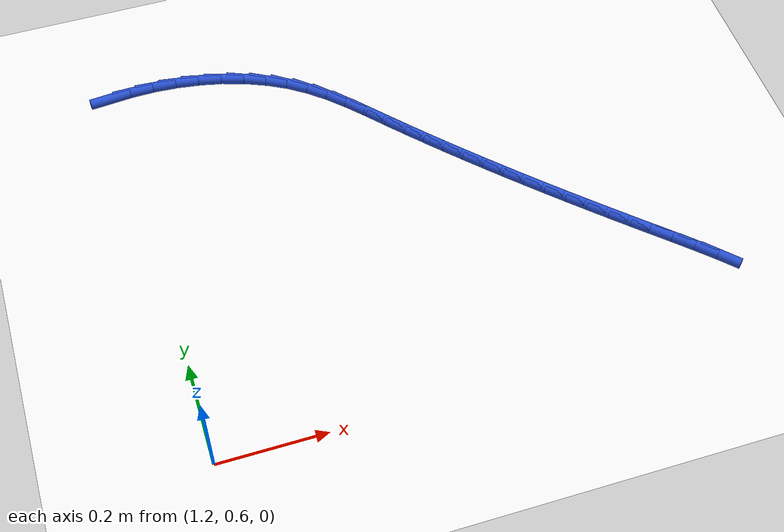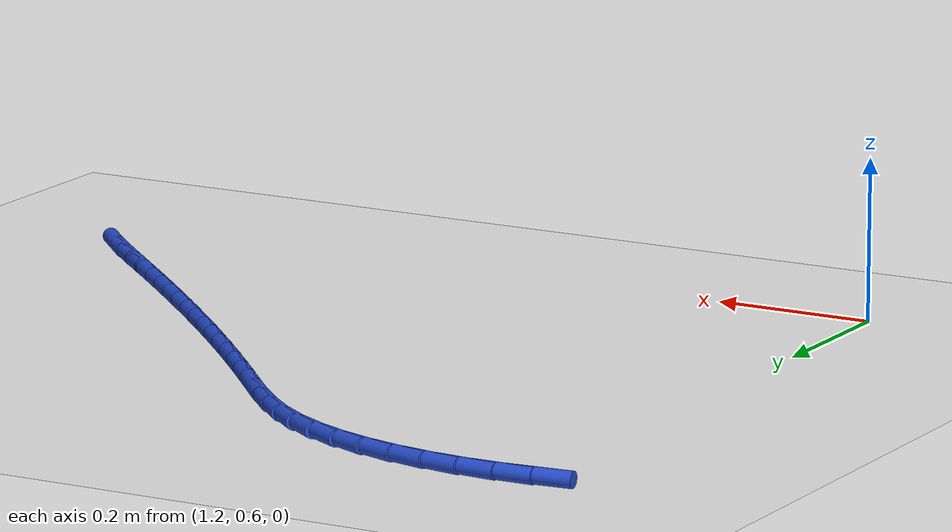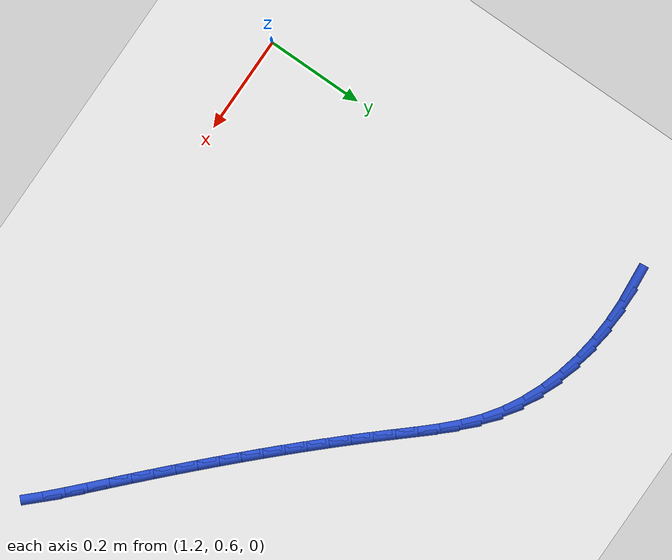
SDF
<sdf version="1.6">
 <world name="default">
  <model name="ground_plane">
   <static>1</static>
   <link name="link">
    <collision name="collision">
     <geometry><plane><normal>0 0 1</normal><size>100 100</size></plane></geometry>
     <surface><friction><ode><mu>100</mu><mu2>50</mu2></ode></friction></surface>
    </collision>
    <visual name="visual">
     <cast_shadows>0</cast_shadows>
     <geometry><plane><normal>0 0 1</normal><size>100 100</size></plane></geometry>
     <material>
      <script><uri>file://media/materials/scripts/gazebo.material</uri><name>Gazebo/WhiteGlow</name></script>
     </material>
    </visual>
   </link>
  </model>
  <model name="line">
   <link name="link_45">
    <pose>1.1858758280295978 1.4385016590685002 0.01 0 1.57 0.08893019031619626</pose>
    <collision name="collision">
     <geometry><cylinder><radius>0.01</radius><length>0.08</length></cylinder></geometry>
    </collision>
    <visual name="visual">
     <material>
      <script><name>Gazebo/Blue</name><uri>file://media/materials/scripts/gazebo.material</uri></script>
     </material>
     <geometry><cylinder><radius>0.01</radius><length>0.08</length></cylinder></geometry>
    </visual>
   </link>
   <link name="link_46">
    <pose>1.2315556763083166 1.4425747197085748 0.01 0 1.57 0.011899840564138219</pose>
    <collision name="collision">
     <geometry><cylinder><radius>0.01</radius><length>0.08</length></cylinder></geometry>
    </collision>
    <visual name="visual">
     <material>
      <script><name>Gazebo/Blue</name><uri>file://media/materials/scripts/gazebo.material</uri></script>
     </material>
     <geometry><cylinder><radius>0.01</radius><length>0.08</length></cylinder></geometry>
    </visual>
   </link>
   <link name="link_47">
    <pose>1.2774704814368125 1.4431211243608106 0.01 0 1.57 -0.06570208504036454</pose>
    <collision name="collision">
     <geometry><cylinder><radius>0.01</radius><length>0.08</length></cylinder></geometry>
    </collision>
    <visual name="visual">
     <material>
      <script><name>Gazebo/Blue</name><uri>file://media/materials/scripts/gazebo.material</uri></script>
     </material>
     <geometry><cylinder><radius>0.01</radius><length>0.08</length></cylinder></geometry>
    </visual>
   </link>
   <link name="link_48">
    <pose>1.32317730191898 1.440113762351378 0.01 0 1.57 -0.14519470935208256</pose>
    <collision name="collision">
     <geometry><cylinder><radius>0.01</radius><length>0.08</length></cylinder></geometry>
    </collision>
    <visual name="visual">
     <material>
      <script><name>Gazebo/Blue</name><uri>file://media/materials/scripts/gazebo.material</uri></script>
     </material>
     <geometry><cylinder><radius>0.01</radius><length>0.08</length></cylinder></geometry>
    </visual>
   </link>
   <link name="link_49">
    <pose>1.3682331962587129 1.4335255230064468 0.01 0 1.57 -0.22790311764480517</pose>
    <collision name="collision">
     <geometry><cylinder><radius>0.01</radius><length>0.08</length></cylinder></geometry>
    </collision>
    <visual name="visual">
     <material>
      <script><name>Gazebo/Blue</name><uri>file://media/materials/scripts/gazebo.material</uri></script>
     </material>
     <geometry><cylinder><radius>0.01</radius><length>0.08</length></cylinder></geometry>
    </visual>
   </link>
   <link name="link_50">
    <pose>1.412195222959903 1.4233292956521861 0.01 0 1.57 -0.3151511222260228</pose>
    <collision name="collision">
     <geometry><cylinder><radius>0.01</radius><length>0.08</length></cylinder></geometry>
    </collision>
    <visual name="visual">
     <material>
      <script><name>Gazebo/Blue</name><uri>file://media/materials/scripts/gazebo.material</uri></script>
     </material>
     <geometry><cylinder><radius>0.01</radius><length>0.08</length></cylinder></geometry>
    </visual>
   </link>
   <link name="link_51">
    <pose>1.4546204405264458 1.4094979696147671 0.01 0 1.57 -0.4082241657953518</pose>
    <collision name="collision">
     <geometry><cylinder><radius>0.01</radius><length>0.08</length></cylinder></geometry>
    </collision>
    <visual name="visual">
     <material>
      <script><name>Gazebo/Blue</name><uri>file://media/materials/scripts/gazebo.material</uri></script>
     </material>
     <geometry><cylinder><radius>0.01</radius><length>0.08</length></cylinder></geometry>
    </visual>
   </link>
   <link name="link_52">
    <pose>1.4950659074622346 1.392004434220359 0.01 0 1.57 -0.50828529681921</pose>
    <collision name="collision">
     <geometry><cylinder><radius>0.01</radius><length>0.08</length></cylinder></geometry>
    </collision>
    <visual name="visual">
     <material>
      <script><name>Gazebo/Blue</name><uri>file://media/materials/scripts/gazebo.material</uri></script>
     </material>
     <geometry><cylinder><radius>0.01</radius><length>0.08</length></cylinder></geometry>
    </visual>
   </link>
   <link name="link_53">
    <pose>1.5330886822711618 1.3708215787951321 0.01 0 1.57 -0.6154524122041676</pose>
    <collision name="collision">
     <geometry><cylinder><radius>0.01</radius><length>0.08</length></cylinder></geometry>
    </collision>
    <visual name="visual">
     <material>
      <script><name>Gazebo/Blue</name><uri>file://media/materials/scripts/gazebo.material</uri></script>
     </material>
     <geometry><cylinder><radius>0.01</radius><length>0.08</length></cylinder></geometry>
    </visual>
   </link>
   <link name="link_54">
    <pose>1.568272867532319 1.3459440433845258 0.01 0 1.57 -0.7133078720711875</pose>
    <collision name="collision">
     <geometry><cylinder><radius>0.01</radius><length>0.08</length></cylinder></geometry>
    </collision>
    <visual name="visual">
     <material>
      <script><name>Gazebo/Blue</name><uri>file://media/materials/scripts/gazebo.material</uri></script>
     </material>
     <geometry><cylinder><radius>0.01</radius><length>0.08</length></cylinder></geometry>
    </visual>
   </link>
   <link name="link_55">
    <pose>1.6007709232331055 1.3178235804455725 0.01 0 1.57 -0.7849528757141836</pose>
    <collision name="collision">
     <geometry><cylinder><radius>0.01</radius><length>0.08</length></cylinder></geometry>
    </collision>
    <visual name="visual">
     <material>
      <script><name>Gazebo/Blue</name><uri>file://media/materials/scripts/gazebo.material</uri></script>
     </material>
     <geometry><cylinder><radius>0.01</radius><length>0.08</length></cylinder></geometry>
    </visual>
   </link>
   <link name="link_56">
    <pose>1.6312753652719412 1.2873462928216546 0.01 0 1.57 -0.8296186448521206</pose>
    <collision name="collision">
     <geometry><cylinder><radius>0.01</radius><length>0.08</length></cylinder></geometry>
    </collision>
    <visual name="visual">
     <material>
      <script><name>Gazebo/Blue</name><uri>file://media/materials/scripts/gazebo.material</uri></script>
     </material>
     <geometry><cylinder><radius>0.01</radius><length>0.08</length></cylinder></geometry>
    </visual>
   </link>
   <link name="link_57">
    <pose>1.6605000886932886 1.255415477946849 0.01 0 1.57 -0.8478316088885182</pose>
    <collision name="collision">
     <geometry><cylinder><radius>0.01</radius><length>0.08</length></cylinder></geometry>
    </collision>
    <visual name="visual">
     <material>
      <script><name>Gazebo/Blue</name><uri>file://media/materials/scripts/gazebo.material</uri></script>
     </material>
     <geometry><cylinder><radius>0.01</radius><length>0.08</length></cylinder></geometry>
    </visual>
   </link>
   <link name="link_58">
    <pose>1.6891589885416112 1.2229344332552343 0.01 0 1.57 -0.8435478911876069</pose>
    <collision name="collision">
     <geometry><cylinder><radius>0.01</radius><length>0.08</length></cylinder></geometry>
    </collision>
    <visual name="visual">
     <material>
      <script><name>Gazebo/Blue</name><uri>file://media/materials/scripts/gazebo.material</uri></script>
     </material>
     <geometry><cylinder><radius>0.01</radius><length>0.08</length></cylinder></geometry>
    </visual>
   </link>
   <link name="link_59">
    <pose>1.7178680344702557 1.1906761525251786 0.01 0 1.57 -0.8343294019616448</pose>
    <collision name="collision">
     <geometry><cylinder><radius>0.01</radius><length>0.08</length></cylinder></geometry>
    </collision>
    <visual name="visual">
     <material>
      <script><name>Gazebo/Blue</name><uri>file://media/materials/scripts/gazebo.material</uri></script>
     </material>
     <geometry><cylinder><radius>0.01</radius><length>0.08</length></cylinder></geometry>
    </visual>
   </link>
   <link name="link_60">
    <pose>1.7467756614256493 1.1587915081343765 0.01 0 1.57 -0.8254408898371693</pose>
    <collision name="collision">
     <geometry><cylinder><radius>0.01</radius><length>0.08</length></cylinder></geometry>
    </collision>
    <visual name="visual">
     <material>
      <script><name>Gazebo/Blue</name><uri>file://media/materials/scripts/gazebo.material</uri></script>
     </material>
     <geometry><cylinder><radius>0.01</radius><length>0.08</length></cylinder></geometry>
    </visual>
   </link>
   <link name="link_61">
    <pose>1.775890929621333 1.1272459145624045 0.01 0 1.57 -0.8169069097646682</pose>
    <collision name="collision">
     <geometry><cylinder><radius>0.01</radius><length>0.08</length></cylinder></geometry>
    </collision>
    <visual name="visual">
     <material>
      <script><name>Gazebo/Blue</name><uri>file://media/materials/scripts/gazebo.material</uri></script>
     </material>
     <geometry><cylinder><radius>0.01</radius><length>0.08</length></cylinder></geometry>
    </visual>
   </link>
   <link name="link_62">
    <pose>1.8052228752988861 1.096004754390736 0.01 0 1.57 -0.8087494122857563</pose>
    <collision name="collision">
     <geometry><cylinder><radius>0.01</radius><length>0.08</length></cylinder></geometry>
    </collision>
    <visual name="visual">
     <material>
      <script><name>Gazebo/Blue</name><uri>file://media/materials/scripts/gazebo.material</uri></script>
     </material>
     <geometry><cylinder><radius>0.01</radius><length>0.08</length></cylinder></geometry>
    </visual>
   </link>
   <link name="link_63">
    <pose>1.834780534699888 1.065033410200845 0.01 0 1.57 -0.8009884876425595</pose>
    <collision name="collision">
     <geometry><cylinder><radius>0.01</radius><length>0.08</length></cylinder></geometry>
    </collision>
    <visual name="visual">
     <material>
      <script><name>Gazebo/Blue</name><uri>file://media/materials/scripts/gazebo.material</uri></script>
     </material>
     <geometry><cylinder><radius>0.01</radius><length>0.08</length></cylinder></geometry>
    </visual>
   </link>
   <link name="link_64">
    <pose>1.8645729440659167 1.0342972645742048 0.01 0 1.57 -0.793642229537139</pose>
    <collision name="collision">
     <geometry><cylinder><radius>0.01</radius><length>0.08</length></cylinder></geometry>
    </collision>
    <visual name="visual">
     <material>
      <script><name>Gazebo/Blue</name><uri>file://media/materials/scripts/gazebo.material</uri></script>
     </material>
     <geometry><cylinder><radius>0.01</radius><length>0.08</length></cylinder></geometry>
    </visual>
   </link>
   <link name="link_65">
    <pose>1.894609139638553 1.0037617000922896 0.01 0 1.57 -0.7867266256854948</pose>
    <collision name="collision">
     <geometry><cylinder><radius>0.01</radius><length>0.08</length></cylinder></geometry>
    </collision>
    <visual name="visual">
     <material>
      <script><name>Gazebo/Blue</name><uri>file://media/materials/scripts/gazebo.material</uri></script>
     </material>
     <geometry><cylinder><radius>0.01</radius><length>0.08</length></cylinder></geometry>
    </visual>
   </link>
   <link name="link_66">
    <pose>1.9248981576593756 0.9733920993365729 0.01 0 1.57 -0.7802554758712065</pose>
    <collision name="collision">
     <geometry><cylinder><radius>0.01</radius><length>0.08</length></cylinder></geometry>
    </collision>
    <visual name="visual">
     <material>
      <script><name>Gazebo/Blue</name><uri>file://media/materials/scripts/gazebo.material</uri></script>
     </material>
     <geometry><cylinder><radius>0.01</radius><length>0.08</length></cylinder></geometry>
    </visual>
   </link>
   <link name="link_67">
    <pose>1.9554490343699633 0.9431538448885287 0.01 0 1.57 -0.7742403375500369</pose>
    <collision name="collision">
     <geometry><cylinder><radius>0.01</radius><length>0.08</length></cylinder></geometry>
    </collision>
    <visual name="visual">
     <material>
      <script><name>Gazebo/Blue</name><uri>file://media/materials/scripts/gazebo.material</uri></script>
     </material>
     <geometry><cylinder><radius>0.01</radius><length>0.08</length></cylinder></geometry>
    </visual>
   </link>
   <link name="link_68">
    <pose>1.986270806011896 0.9130123193296309 0.01 0 1.57 -0.7686904984523881</pose>
    <collision name="collision">
     <geometry><cylinder><radius>0.01</radius><length>0.08</length></cylinder></geometry>
    </collision>
    <visual name="visual">
     <material>
      <script><name>Gazebo/Blue</name><uri>file://media/materials/scripts/gazebo.material</uri></script>
     </material>
     <geometry><cylinder><radius>0.01</radius><length>0.08</length></cylinder></geometry>
    </visual>
   </link>
   <link name="link_69">
    <pose>2.017372508826753 0.8829329052413524 0.01 0 1.57 -0.7636129750957527</pose>
    <collision name="collision">
     <geometry><cylinder><radius>0.01</radius><length>0.08</length></cylinder></geometry>
    </collision>
    <visual name="visual">
     <material>
      <script><name>Gazebo/Blue</name><uri>file://media/materials/scripts/gazebo.material</uri></script>
     </material>
     <geometry><cylinder><radius>0.01</radius><length>0.08</length></cylinder></geometry>
    </visual>
   </link>
   <link name="link_70">
    <pose>2.0487631790561123 0.8528809852051679 0.01 0 1.57 -0.7590125356660842</pose>
    <collision name="collision">
     <geometry><cylinder><radius>0.01</radius><length>0.08</length></cylinder></geometry>
    </collision>
    <visual name="visual">
     <material>
      <script><name>Gazebo/Blue</name><uri>file://media/materials/scripts/gazebo.material</uri></script>
     </material>
     <geometry><cylinder><radius>0.01</radius><length>0.08</length></cylinder></geometry>
    </visual>
   </link>
   <link name="link_71">
    <pose>2.0804518529415557 0.8228219418025505 0.01 0 1.57 -0.756062749372883</pose>
    <collision name="collision">
     <geometry><cylinder><radius>0.01</radius><length>0.08</length></cylinder></geometry>
    </collision>
    <visual name="visual">
     <material>
      <script><name>Gazebo/Blue</name><uri>file://media/materials/scripts/gazebo.material</uri></script>
     </material>
     <geometry><cylinder><radius>0.01</radius><length>0.08</length></cylinder></geometry>
    </visual>
   </link>
   <link name="link_72">
    <pose>2.1123954493347 0.7926995979302057 0.01 0 1.57 -0.7619874813778722</pose>
    <collision name="collision">
     <geometry><cylinder><radius>0.01</radius><length>0.08</length></cylinder></geometry>
    </collision>
    <visual name="visual">
     <material>
      <script><name>Gazebo/Blue</name><uri>file://media/materials/scripts/gazebo.material</uri></script>
     </material>
     <geometry><cylinder><radius>0.01</radius><length>0.08</length></cylinder></geometry>
    </visual>
   </link>
   <link name="link_73">
    <pose>2.144227598352158 0.7623240398717547 0.01 0 1.57 -0.7795907627457009</pose>
    <collision name="collision">
     <geometry><cylinder><radius>0.01</radius><length>0.08</length></cylinder></geometry>
    </collision>
    <visual name="visual">
     <material>
      <script><name>Gazebo/Blue</name><uri>file://media/materials/scripts/gazebo.material</uri></script>
     </material>
     <geometry><cylinder><radius>0.01</radius><length>0.08</length></cylinder></geometry>
    </visual>
   </link>
   <link name="link_74">
    <pose>2.1754581395836583 0.7314541448088459 0.01 0 1.57 -0.8091520751239806</pose>
    <collision name="collision">
     <geometry><cylinder><radius>0.01</radius><length>0.08</length></cylinder></geometry>
    </collision>
    <visual name="visual">
     <material>
      <script><name>Gazebo/Blue</name><uri>file://media/materials/scripts/gazebo.material</uri></script>
     </material>
     <geometry><cylinder><radius>0.01</radius><length>0.08</length></cylinder></geometry>
    </visual>
   </link>
  </model>
 </world>
</sdf>
